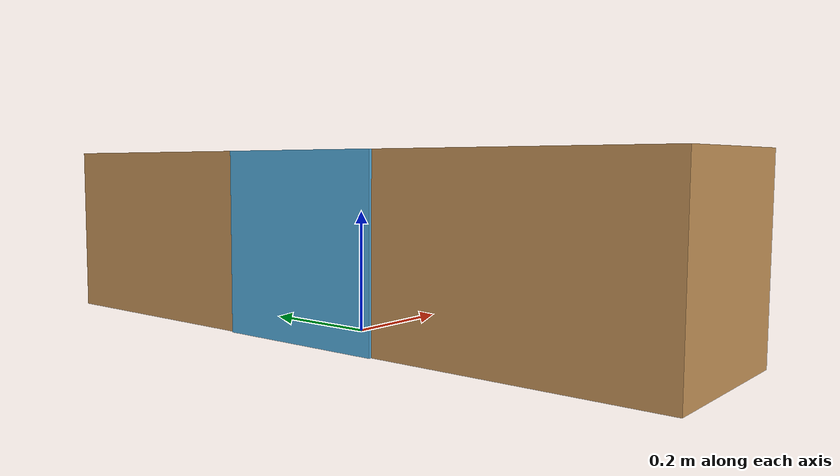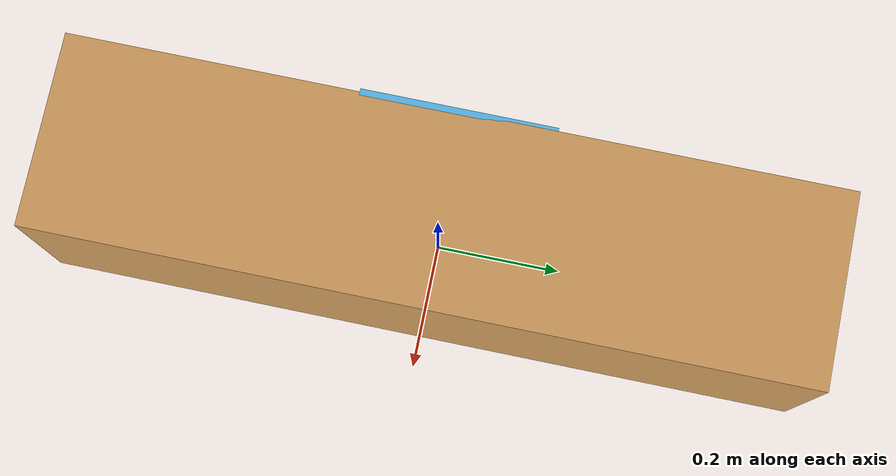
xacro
<?xml version="1.0"?>

<robot name="simulation_environment_cube12" xmlns:xacro="http://www.ros.org/wiki/xacro">

  <link name="cube_put">
    <inertial>
      <mass value = "0.1" />
      <origin xyz="0 0 0" rpy="0 0 0"/>
      <inertia
          ixx="0.000001" ixy="0" ixz="0"
          iyy="0.000001" iyz="0"
          izz="0.000001"/>
    </inertial>
    <visual>
      <origin rpy="${pi/2} 0 0" xyz="0 0.6 0.15"/>
      <geometry>
        <mesh filename="package://cooperation_landing/urdf/mesh/cube_0.3_0.3_1.2.dae" />
      </geometry>
    </visual>
    <collision>
      <origin rpy="0 0 ${pi/2}" xyz="0 0 0.1"/>
      <geometry>
        <box size="1.2 0.3 0.5"/>
      </geometry>
    </collision>
  </link>

  <joint name="apriltag_12_joint" type="fixed">
    <parent link="cube_put"/>
    <child link="apriltag_12"/>
    <origin xyz="-0.15 0 0.15" rpy="${pi/2} 0 ${-pi/2}" />
    <axis xyz="0 0 1"/>
  </joint>

  <link name="apriltag_12">
    <inertial>
      <mass value = "0.001" />
      <origin xyz="0 0 0" rpy="0 0 0"/>
      <inertia
          ixx="0.000001" ixy="0" ixz="0"
          iyy="0.000001" iyz="0"
          izz="0.000001"/>
    </inertial>
    <visual>
      <origin rpy="0 0 0" xyz="0 0 0"/>
      <geometry>
        <mesh filename="package://cooperation_landing/urdf/mesh/apriltag_12_0.3.dae" />
      </geometry>
    </visual>
    <collision>
      <origin rpy="0 0 0" xyz="0 0 0"/>
      <geometry>
        <box size="0.001 0.001 0.001" />
      </geometry>
    </collision>
  </link>

</robot>
